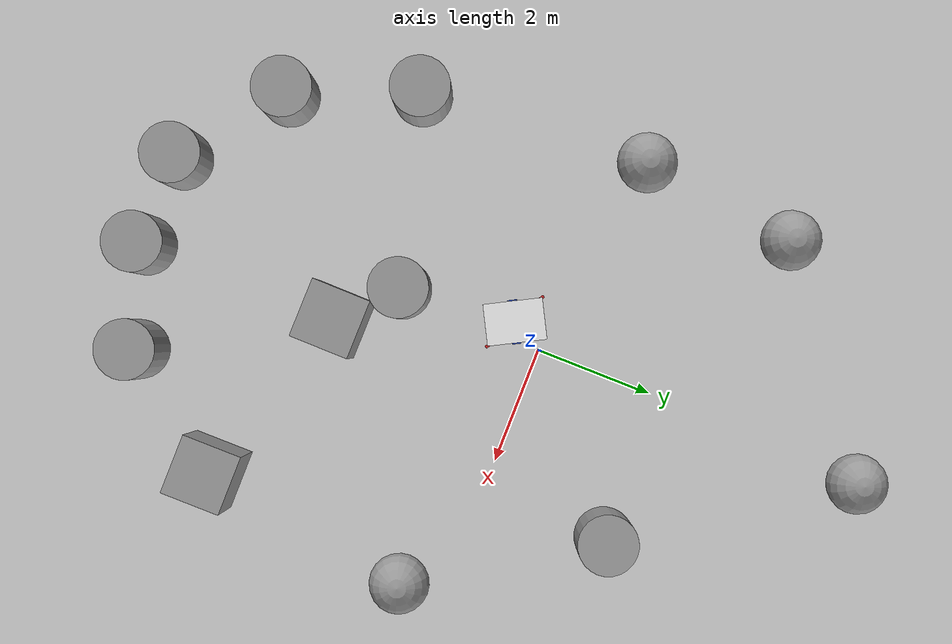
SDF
<sdf version="1.7">
 <world name="default">
  <light name="sun" type="directional">
   <pose>0 0 10 0 -0 0</pose>
   <diffuse>0.8 0.8 0.8 1</diffuse>
   <specular>0.2 0.2 0.2 1</specular>
   <attenuation>
    <range>1000</range>
    <constant>0.9</constant>
    <linear>0.01</linear>
    <quadratic>0.001</quadratic>
   </attenuation>
   <direction>-0.5 0.1 -0.9</direction>
   <spot><inner_angle>0</inner_angle><outer_angle>0</outer_angle><falloff>0</falloff></spot>
  </light>
  <model name="ground_plane">
   <static>1</static>
   <link name="link">
    <collision name="collision">
     <geometry><plane><normal>0 0 1</normal><size>100 100</size></plane></geometry>
     <surface>
      <contact><collide_bitmask>65535</collide_bitmask></contact>
      <friction><ode><mu>100</mu><mu2>50</mu2></ode></friction>
     </surface>
    </collision>
    <visual name="visual">
     <cast_shadows>0</cast_shadows>
     <geometry><plane><normal>0 0 1</normal><size>100 100</size></plane></geometry>
     <material>
      <script><uri>file://media/materials/scripts/gazebo.material</uri><name>Gazebo/Grey</name></script>
     </material>
    </visual>
   </link>
  </model>
  <gravity>0 0 -9.8</gravity>
  <magnetic_field>6e-06 2.3e-05 -4.2e-05</magnetic_field>
  <atmosphere type="adiabatic"/>
  <physics type="ode">
   <max_step_size>0.001</max_step_size>
   <real_time_factor>1</real_time_factor>
   <real_time_update_rate>1000</real_time_update_rate>
  </physics>
  <scene><ambient>0.4 0.4 0.4 1</ambient><background>0.7 0.7 0.7 1</background><shadows>1</shadows></scene>
  <audio><device>default</device></audio>
  <spherical_coordinates>
   <surface_model>EARTH_WGS84</surface_model>
   <latitude_deg>0</latitude_deg>
   <longitude_deg>0</longitude_deg>
   <elevation>0</elevation>
   <heading_deg>0</heading_deg>
  </spherical_coordinates>
  <model name="agv_schaeffler">
   <link name="base_link">
    <inertial>
     <pose>0 0 -0.01569 0 -0 0</pose>
     <mass>58</mass>
     <inertia>
      <ixx>2.93936</ixx>
      <ixy>-0.699644</ixy>
      <ixz>0</ixz>
      <iyy>6.05476</iyy>
      <iyz>0</iyz>
      <izz>8.50318</izz>
     </inertia>
    </inertial>
    <collision name="base_link_fixed_joint_lump__chassis_collision">
     <pose>0 0 0.075 0 -0 0</pose>
     <geometry><box><size>1 0.7 0.2</size></box></geometry>
    </collision>
    <collision name="base_link_fixed_joint_lump__caster_wheel_bl_collision_1">
     <pose>-0.4 0.2 -0.03 0 -0 0</pose>
     <geometry><sphere><radius>0.05</radius></sphere></geometry>
     <surface><friction><ode><mu>0.001</mu><mu2>0.001</mu2></ode></friction></surface>
    </collision>
    <collision name="base_link_fixed_joint_lump__caster_wheel_br_collision_2">
     <pose>-0.4 -0.2 -0.03 0 -0 0</pose>
     <geometry><sphere><radius>0.05</radius></sphere></geometry>
     <surface><friction><ode><mu>0.001</mu><mu2>0.001</mu2></ode></friction></surface>
    </collision>
    <collision name="base_link_fixed_joint_lump__caster_wheel_fl_collision_3">
     <pose>0.4 0.2 -0.03 0 -0 0</pose>
     <geometry><sphere><radius>0.05</radius></sphere></geometry>
     <surface><friction><ode><mu>0.001</mu><mu2>0.001</mu2></ode></friction></surface>
    </collision>
    <collision name="base_link_fixed_joint_lump__caster_wheel_fr_collision_4">
     <pose>0.4 -0.2 -0.03 0 -0 0</pose>
     <geometry><sphere><radius>0.05</radius></sphere></geometry>
     <surface><friction><ode><mu>0.001</mu><mu2>0.001</mu2></ode></friction></surface>
    </collision>
    <collision name="base_link_fixed_joint_lump__laser_back_collision_5">
     <pose>-0.5 -0.35 0.115 0 0 -2.62318</pose>
     <geometry><box><size>0.07 0.05 0.1</size></box></geometry>
    </collision>
    <collision name="base_link_fixed_joint_lump__laser_front_collision_6">
     <pose>0.5 0.35 0.115 0 -0 0.523599</pose>
     <geometry><box><size>0.07 0.05 0.1</size></box></geometry>
    </collision>
    <visual name="base_link_fixed_joint_lump__chassis_visual">
     <pose>0 0 0.075 0 -0 0</pose>
     <geometry><box><size>1 0.7 0.2</size></box></geometry>
     <material>
      <script><name>Gazebo/White</name><uri>file://media/materials/scripts/gazebo.material</uri></script>
     </material>
    </visual>
    <visual name="base_link_fixed_joint_lump__caster_wheel_bl_visual_1">
     <pose>-0.4 0.2 -0.03 0 -0 0</pose>
     <geometry><sphere><radius>0.05</radius></sphere></geometry>
     <material>
      <script><name>Gazebo/Black</name><uri>file://media/materials/scripts/gazebo.material</uri></script>
     </material>
    </visual>
    <visual name="base_link_fixed_joint_lump__caster_wheel_br_visual_2">
     <pose>-0.4 -0.2 -0.03 0 -0 0</pose>
     <geometry><sphere><radius>0.05</radius></sphere></geometry>
     <material>
      <script><name>Gazebo/Black</name><uri>file://media/materials/scripts/gazebo.material</uri></script>
     </material>
    </visual>
    <visual name="base_link_fixed_joint_lump__caster_wheel_fl_visual_3">
     <pose>0.4 0.2 -0.03 0 -0 0</pose>
     <geometry><sphere><radius>0.05</radius></sphere></geometry>
     <material>
      <script><name>Gazebo/Black</name><uri>file://media/materials/scripts/gazebo.material</uri></script>
     </material>
    </visual>
    <visual name="base_link_fixed_joint_lump__caster_wheel_fr_visual_4">
     <pose>0.4 -0.2 -0.03 0 -0 0</pose>
     <geometry><sphere><radius>0.05</radius></sphere></geometry>
     <material>
      <script><name>Gazebo/Black</name><uri>file://media/materials/scripts/gazebo.material</uri></script>
     </material>
    </visual>
    <visual name="base_link_fixed_joint_lump__laser_back_visual_5">
     <pose>-0.5 -0.35 0.115 0 0 -2.62318</pose>
     <geometry><box><size>0.07 0.05 0.1</size></box></geometry>
     <material>
      <script><name>Gazebo/Red</name><uri>file://media/materials/scripts/gazebo.material</uri></script>
     </material>
    </visual>
    <visual name="base_link_fixed_joint_lump__laser_front_visual_6">
     <pose>0.5 0.35 0.115 0 -0 0.523599</pose>
     <geometry><box><size>0.07 0.05 0.1</size></box></geometry>
     <material>
      <script><name>Gazebo/Red</name><uri>file://media/materials/scripts/gazebo.material</uri></script>
     </material>
    </visual>
    <sensor name="laser2" type="ray">
     <visualize>1</visualize>
     <update_rate>10</update_rate>
     <ray>
      <scan>
       <horizontal>
        <samples>270</samples>
        <min_angle>-2.35</min_angle>
        <max_angle>2.35</max_angle>
        <resolution>1</resolution>
       </horizontal>
       <vertical><samples>1</samples><min_angle>0</min_angle><max_angle>0</max_angle></vertical>
      </scan>
      <range><min>0.5</min><max>10</max></range>
     </ray>
     <plugin name="laser_controller_back" filename="libgazebo_ros_ray_sensor.so">
      <ros><argument>~/out:=scan_back</argument></ros>
      <output_type>sensor_msgs/LaserScan</output_type>
      <frame_name>laser_back</frame_name>
     </plugin>
     <pose>-0.5 -0.35 0.115 0 -0 -2.62319</pose>
    </sensor>
    <sensor name="laser1" type="ray">
     <visualize>1</visualize>
     <update_rate>10</update_rate>
     <ray>
      <scan>
       <horizontal>
        <samples>270</samples>
        <min_angle>-2.35</min_angle>
        <max_angle>2.35</max_angle>
        <resolution>1</resolution>
       </horizontal>
       <vertical><samples>1</samples><min_angle>0</min_angle><max_angle>0</max_angle></vertical>
      </scan>
      <range><min>0.5</min><max>10</max></range>
     </ray>
     <plugin name="laser_controller_fornt" filename="libgazebo_ros_ray_sensor.so">
      <ros><argument>~/out:=scan_front</argument></ros>
      <output_type>sensor_msgs/LaserScan</output_type>
      <frame_name>laser_front</frame_name>
     </plugin>
     <pose>0.5 0.35 0.115 0 -0 0.523599</pose>
    </sensor>
   </link>
   <joint name="left_wheel_joint" type="revolute">
    <pose relative_to="base_link">0 0.35 0 -1.5708 0 0</pose>
    <parent>base_link</parent>
    <child>left_wheel</child>
    <axis>
     <xyz>0 0 1</xyz>
     <limit><lower>-1e+16</lower><upper>1e+16</upper></limit>
     <dynamics><spring_reference>0</spring_reference><spring_stiffness>0</spring_stiffness></dynamics>
    </axis>
   </joint>
   <link name="left_wheel">
    <pose relative_to="left_wheel_joint">0 0 0 0 -0 0</pose>
    <inertial>
     <mass>5</mass>
     <inertia>
      <ixx>0.00866667</ixx>
      <ixy>0</ixy>
      <ixz>0</ixz>
      <iyy>0.00866667</iyy>
      <iyz>0</iyz>
      <izz>0.016</izz>
     </inertia>
    </inertial>
    <collision name="left_wheel_collision">
     <geometry><cylinder><length>0.04</length><radius>0.08</radius></cylinder></geometry>
    </collision>
    <visual name="left_wheel_visual">
     <geometry><cylinder><length>0.04</length><radius>0.08</radius></cylinder></geometry>
     <material>
      <script><name>Gazebo/Blue</name><uri>file://media/materials/scripts/gazebo.material</uri></script>
     </material>
    </visual>
   </link>
   <joint name="right_wheel_joint" type="revolute">
    <pose relative_to="base_link">0 -0.35 0 1.5708 -0 0</pose>
    <parent>base_link</parent>
    <child>right_wheel</child>
    <axis>
     <xyz>0 0 -1</xyz>
     <limit><lower>-1e+16</lower><upper>1e+16</upper></limit>
     <dynamics><spring_reference>0</spring_reference><spring_stiffness>0</spring_stiffness></dynamics>
    </axis>
   </joint>
   <link name="right_wheel">
    <pose relative_to="right_wheel_joint">0 0 0 0 -0 0</pose>
    <inertial>
     <mass>5</mass>
     <inertia>
      <ixx>0.00866667</ixx>
      <ixy>0</ixy>
      <ixz>0</ixz>
      <iyy>0.00866667</iyy>
      <iyz>0</iyz>
      <izz>0.016</izz>
     </inertia>
    </inertial>
    <collision name="right_wheel_collision">
     <geometry><cylinder><length>0.04</length><radius>0.08</radius></cylinder></geometry>
    </collision>
    <visual name="right_wheel_visual">
     <geometry><cylinder><length>0.04</length><radius>0.08</radius></cylinder></geometry>
     <material>
      <script><name>Gazebo/Blue</name><uri>file://media/materials/scripts/gazebo.material</uri></script>
     </material>
    </visual>
   </link>
   <static>0</static>
   <plugin name="diff_drive" filename="libgazebo_ros_diff_drive.so">
    <left_joint>left_wheel_joint</left_joint>
    <right_joint>right_wheel_joint</right_joint>
    <wheel_seperation>0.7</wheel_seperation>
    <wheel_diameter>0.16</wheel_diameter>
    <max_wheel_torque>200</max_wheel_torque>
    <max_wheel_accleration>10.0</max_wheel_accleration>
    <odometry_frame>odom</odometry_frame>
    <robot_base_frame>base_link</robot_base_frame>
    <publish_odom>1</publish_odom>
    <publish_odom_tf>1</publish_odom_tf>
    <publish_wheel_tf>1</publish_wheel_tf>
   </plugin>
   <pose>-0.294934 -0.540551 0.08 0 0 -1.08201</pose>
  </model>
  <model name="unit_cylinder">
   <pose>2.51917 2.16597 0.499994 -4e-06 -3e-06 -0</pose>
   <link name="link">
    <inertial>
     <mass>1</mass>
     <inertia><ixx>0.145833</ixx><ixy>0</ixy><ixz>0</ixz><iyy>0.145833</iyy><iyz>0</iyz><izz>0.125</izz></inertia>
    </inertial>
    <collision name="collision">
     <geometry><cylinder><radius>0.5</radius><length>1</length></cylinder></geometry>
    </collision>
    <visual name="visual">
     <geometry><cylinder><radius>0.5</radius><length>1</length></cylinder></geometry>
     <material>
      <script><name>Gazebo/Grey</name><uri>file://media/materials/scripts/gazebo.material</uri></script>
     </material>
    </visual>
   </link>
  </model>
  <model name="unit_sphere">
   <pose>-3.19739 3.20306 0.5 0 -0 0</pose>
   <link name="link">
    <inertial>
     <mass>1</mass>
     <inertia><ixx>0.1</ixx><ixy>0</ixy><ixz>0</ixz><iyy>0.1</iyy><iyz>0</iyz><izz>0.1</izz></inertia>
    </inertial>
    <collision name="collision"><geometry><sphere><radius>0.5</radius></sphere></geometry></collision>
    <visual name="visual">
     <geometry><sphere><radius>0.5</radius></sphere></geometry>
     <material>
      <script><name>Gazebo/Grey</name><uri>file://media/materials/scripts/gazebo.material</uri></script>
     </material>
    </visual>
   </link>
  </model>
  <model name="unit_sphere_0">
   <pose>-3.52486 0.53564 0.5 0 -0 0</pose>
   <link name="link">
    <inertial>
     <mass>1</mass>
     <inertia><ixx>0.1</ixx><ixy>0</ixy><ixz>0</ixz><iyy>0.1</iyy><iyz>0</iyz><izz>0.1</izz></inertia>
    </inertial>
    <collision name="collision"><geometry><sphere><radius>0.5</radius></sphere></geometry></collision>
    <visual name="visual">
     <geometry><sphere><radius>0.5</radius></sphere></geometry>
     <material>
      <script><name>Gazebo/Grey</name><uri>file://media/materials/scripts/gazebo.material</uri></script>
     </material>
    </visual>
   </link>
  </model>
  <model name="unit_sphere_1">
   <pose>0.140907 5.67178 0.5 0 -0 0</pose>
   <link name="link">
    <inertial>
     <mass>1</mass>
     <inertia><ixx>0.1</ixx><ixy>0</ixy><ixz>0</ixz><iyy>0.1</iyy><iyz>0</iyz><izz>0.1</izz></inertia>
    </inertial>
    <collision name="collision"><geometry><sphere><radius>0.5</radius></sphere></geometry></collision>
    <visual name="visual">
     <geometry><sphere><radius>0.5</radius></sphere></geometry>
     <material>
      <script><name>Gazebo/Grey</name><uri>file://media/materials/scripts/gazebo.material</uri></script>
     </material>
    </visual>
   </link>
  </model>
  <model name="unit_box">
   <pose>0.753299 -3.34396 0.499995 0 -1e-05 -0.011586</pose>
   <link name="link">
    <inertial>
     <mass>1</mass>
     <inertia>
      <ixx>0.166667</ixx>
      <ixy>0</ixy>
      <ixz>0</ixz>
      <iyy>0.166667</iyy>
      <iyz>0</iyz>
      <izz>0.166667</izz>
     </inertia>
    </inertial>
    <collision name="collision"><geometry><box><size>1 1 1</size></box></geometry></collision>
    <visual name="visual">
     <geometry><box><size>1 1 1</size></box></geometry>
     <material>
      <script><name>Gazebo/Grey</name><uri>file://media/materials/scripts/gazebo.material</uri></script>
     </material>
    </visual>
   </link>
  </model>
  <model name="unit_cylinder_5">
   <pose>-0.111328 -2.50223 0.5 0 -0 0.005883</pose>
   <link name="link">
    <inertial>
     <mass>1</mass>
     <inertia><ixx>0.145833</ixx><ixy>0</ixy><ixz>0</ixz><iyy>0.145833</iyy><iyz>0</iyz><izz>0.125</izz></inertia>
    </inertial>
    <collision name="collision">
     <geometry><cylinder><radius>0.5</radius><length>1</length></cylinder></geometry>
    </collision>
    <visual name="visual">
     <geometry><cylinder><radius>0.5</radius><length>1</length></cylinder></geometry>
     <material>
      <script><name>Gazebo/Grey</name><uri>file://media/materials/scripts/gazebo.material</uri></script>
     </material>
    </visual>
   </link>
  </model>
  <model name="unit_cylinder_6">
   <pose>2.42456 -6.24406 0.499998 3e-06 -3e-06 0</pose>
   <link name="link">
    <inertial>
     <mass>1</mass>
     <inertia><ixx>0.145833</ixx><ixy>0</ixy><ixz>0</ixz><iyy>0.145833</iyy><iyz>0</iyz><izz>0.125</izz></inertia>
    </inertial>
    <collision name="collision">
     <geometry><cylinder><radius>0.5</radius><length>1</length></cylinder></geometry>
    </collision>
    <visual name="visual">
     <geometry><cylinder><radius>0.5</radius><length>1</length></cylinder></geometry>
     <material>
      <script><name>Gazebo/Grey</name><uri>file://media/materials/scripts/gazebo.material</uri></script>
     </material>
    </visual>
   </link>
  </model>
  <model name="unit_box_0">
   <pose>3.85366 -4.35913 0.499995 0 -1e-05 0</pose>
   <link name="link">
    <inertial>
     <mass>1</mass>
     <inertia>
      <ixx>0.166667</ixx>
      <ixy>0</ixy>
      <ixz>0</ixz>
      <iyy>0.166667</iyy>
      <iyz>0</iyz>
      <izz>0.166667</izz>
     </inertia>
    </inertial>
    <collision name="collision"><geometry><box><size>1 1 1</size></box></geometry></collision>
    <visual name="visual">
     <geometry><box><size>1 1 1</size></box></geometry>
     <material>
      <script><name>Gazebo/Grey</name><uri>file://media/materials/scripts/gazebo.material</uri></script>
     </material>
    </visual>
   </link>
  </model>
  <model name="unit_sphere_2">
   <pose>4.41313 -0.749169 0.5 0 -0 0</pose>
   <link name="link">
    <inertial>
     <mass>1</mass>
     <inertia><ixx>0.1</ixx><ixy>0</ixy><ixz>0</ixz><iyy>0.1</iyy><iyz>0</iyz><izz>0.1</izz></inertia>
    </inertial>
    <collision name="collision"><geometry><sphere><radius>0.5</radius></sphere></geometry></collision>
    <visual name="visual">
     <geometry><sphere><radius>0.5</radius></sphere></geometry>
     <material>
      <script><name>Gazebo/Grey</name><uri>file://media/materials/scripts/gazebo.material</uri></script>
     </material>
    </visual>
   </link>
  </model>
  <model name="unit_cylinder_0">
   <pose>-0.796698 -6.71843 0.499993 -3e-06 -3e-06 0</pose>
   <link name="link">
    <inertial>
     <mass>1</mass>
     <inertia><ixx>0.145833</ixx><ixy>0</ixy><ixz>0</ixz><iyy>0.145833</iyy><iyz>0</iyz><izz>0.125</izz></inertia>
    </inertial>
    <collision name="collision">
     <geometry><cylinder><radius>0.5</radius><length>1</length></cylinder></geometry>
    </collision>
    <visual name="visual">
     <geometry><cylinder><radius>0.5</radius><length>1</length></cylinder></geometry>
     <material>
      <script><name>Gazebo/Grey</name><uri>file://media/materials/scripts/gazebo.material</uri></script>
     </material>
    </visual>
   </link>
  </model>
  <model name="unit_cylinder_1">
   <pose>-2.43859 -5.43103 0.499997 3e-06 4e-06 -0</pose>
   <link name="link">
    <inertial>
     <mass>1</mass>
     <inertia><ixx>0.145833</ixx><ixy>0</ixy><ixz>0</ixz><iyy>0.145833</iyy><iyz>0</iyz><izz>0.125</izz></inertia>
    </inertial>
    <collision name="collision">
     <geometry><cylinder><radius>0.5</radius><length>1</length></cylinder></geometry>
    </collision>
    <visual name="visual">
     <geometry><cylinder><radius>0.5</radius><length>1</length></cylinder></geometry>
     <material>
      <script><name>Gazebo/Grey</name><uri>file://media/materials/scripts/gazebo.material</uri></script>
     </material>
    </visual>
   </link>
  </model>
  <model name="unit_cylinder_2">
   <pose>-3.25745 -3.35393 0.499993 -3e-06 -4e-06 -0</pose>
   <link name="link">
    <inertial>
     <mass>1</mass>
     <inertia><ixx>0.145833</ixx><ixy>0</ixy><ixz>0</ixz><iyy>0.145833</iyy><iyz>0</iyz><izz>0.125</izz></inertia>
    </inertial>
    <collision name="collision">
     <geometry><cylinder><radius>0.5</radius><length>1</length></cylinder></geometry>
    </collision>
    <visual name="visual">
     <geometry><cylinder><radius>0.5</radius><length>1</length></cylinder></geometry>
     <material>
      <script><name>Gazebo/Grey</name><uri>file://media/materials/scripts/gazebo.material</uri></script>
     </material>
    </visual>
   </link>
  </model>
  <model name="unit_cylinder_3">
   <pose>0.758312 -6.76668 0.499997 3e-06 4e-06 -0</pose>
   <link name="link">
    <inertial>
     <mass>1</mass>
     <inertia><ixx>0.145833</ixx><ixy>0</ixy><ixz>0</ixz><iyy>0.145833</iyy><iyz>0</iyz><izz>0.125</izz></inertia>
    </inertial>
    <collision name="collision">
     <geometry><cylinder><radius>0.5</radius><length>1</length></cylinder></geometry>
    </collision>
    <visual name="visual">
     <geometry><cylinder><radius>0.5</radius><length>1</length></cylinder></geometry>
     <material>
      <script><name>Gazebo/Grey</name><uri>file://media/materials/scripts/gazebo.material</uri></script>
     </material>
    </visual>
   </link>
  </model>
 </world>
</sdf>
